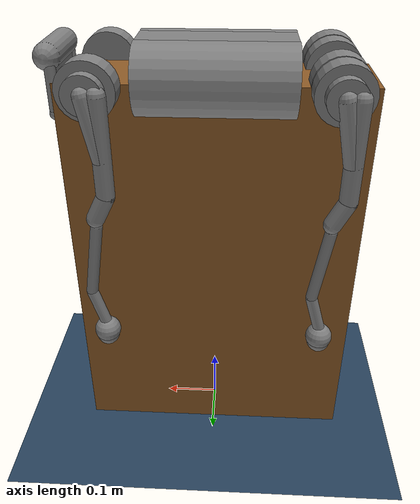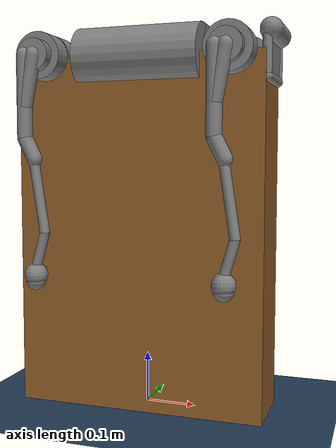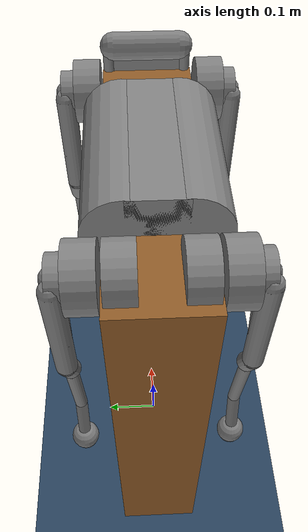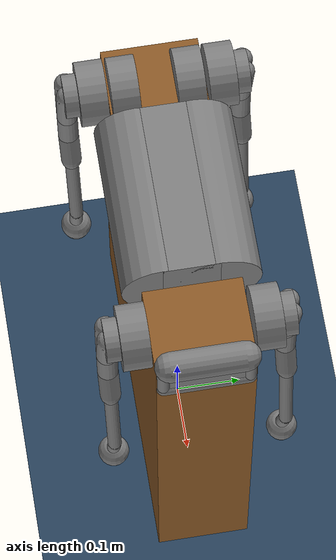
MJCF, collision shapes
<mujoco model="go1_block_scene">
  <include file="go1.xml"/>

  <statistic center="0 0 0.5" extent="1.5"/>

  <visual>
    <headlight diffuse="0.8 0.8 0.8" ambient="0.3 0.3 0.3" specular="0.1 0.1 0.1"/>
    <rgba haze="0.15 0.25 0.35 1"/>
    <global azimuth="120" elevation="-20"/>
  </visual>

  <asset>
    <texture type="skybox" builtin="gradient" rgb1="0.6 0.8 1.0" rgb2="0.2 0.4 0.6"
             width="512" height="3072"/>
    <texture type="2d" name="groundplane" builtin="checker" mark="edge"
             rgb1="0.2 0.3 0.4" rgb2="0.1 0.2 0.3" markrgb="0.8 0.8 0.8"
             width="300" height="300"/>
    <material name="groundplane" texture="groundplane" texuniform="true"
              texrepeat="5 5" reflectance="0.5"/>
    <material name="block" rgba="0.55 0.35 0.15 1"/>
  </asset>

  <worldbody>
    <light pos="0 0 2.5" dir="0 0 -1" directional="true"
           diffuse="1.0 1.0 1.0" specular="0.5 0.5 0.5"/>
    <geom name="floor" size="0 0 0.05" type="plane" material="groundplane"/>

    <geom name="block" type="box" size="0.25 0.07 0.35"
          pos="0 0 0.35" material="block" contype="1" conaffinity="1"/>
  </worldbody>

</mujoco>

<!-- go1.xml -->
<mujoco model="go1">
  <compiler angle="radian" meshdir="assets" autolimits="true"/>

  <option cone="elliptic" impratio="100"/>
  <option gravity="0 0 -9.81" iterations="50" solver="Newton" timestep="0.002"/>

  <default>
    <default class="go1">
      <geom friction="0.6" margin="0.001" condim="1"/>
      <joint axis="0 1 0" damping="2" armature="0.01" frictionloss="0.2"/>
      <motor ctrlrange="-33.5 33.5" ctrllimited="true"/>
      <default class="abduction">
        <joint axis="1 0 0" damping="1" range="-0.863 0.863"/>
        <motor ctrlrange="-33.5 33.5" ctrllimited="true"/>
      </default>
      <default class="hip">
        <joint range="-0.686 4.501"/>
        <motor ctrlrange="-33.5 33.5" ctrllimited="true"/>
      </default>
      <default class="knee">
        <joint range="-2.818 -0.888"/>
        <motor ctrlrange="-33.5 33.5" ctrllimited="true"/>
      </default>
      <default class="visual">
        <geom type="mesh" contype="0" conaffinity="0" group="2" material="dark"/>
      </default>
      <default class="collision">
        <geom group="3" type="capsule"/>
        <default class="hip_left1">
          <geom size="0.046 0.02" pos="0 0.045 0" quat="1 1 0 0" type="cylinder"/>
        </default>
        <default class="hip_left2">
          <geom size="0.031 0.02" pos="0 0.065 0" quat="1 1 0 0" type="cylinder"/>
        </default>
        <default class="hip_left3">
          <geom size="0.046 0.02" quat="1 1 0 0" type="cylinder"/>
        </default>
        <default class="hip_right1">
          <geom size="0.046 0.02" pos="0 -0.045 0" quat="1 1 0 0" type="cylinder"/>
        </default>
        <default class="hip_right2">
          <geom size="0.031 0.02" pos="0 -0.065 0" quat="1 1 0 0" type="cylinder"/>
        </default>
        <default class="hip_right3">
          <geom size="0.046 0.02" quat="1 1 0 0" type="cylinder"/>
        </default>
        <default class="thigh1">
          <geom size="0.015" fromto="-0.02 0 0 -0.02 0 -0.16"/>
        </default>
        <default class="thigh2">
          <geom size="0.015" fromto="0 0 0 -0.02 0 -0.1"/>
        </default>
        <default class="thigh3">
          <geom size="0.015" fromto="-0.02 0 -0.16 0 0 -0.2"/>
        </default>
        <default class="calf1">
          <geom size="0.01" fromto="0 0 0 0.02 0 -0.13"/>
        </default>
        <default class="calf2">
          <geom size="0.01" fromto="0.02 0 -0.13 0 0 -0.2"/>
        </default>
        <default class="foot">
          <geom type="sphere" size="0.023" pos="0 0 -0.213" priority="1"
                solimp="0.5 1 0.031" condim="6" friction=".5 0.02 0.01"/>
        </default>
      </default>
    </default>
  </default>

  <asset>
    <material name="dark" rgba="0.1 0.1 0.1 1"/>
    <mesh class="go1" file="trunk.stl"/>
    <mesh class="go1" file="hip.stl"/>
    <mesh class="go1" file="thigh_mirror.stl"/>
    <mesh class="go1" file="calf.stl"/>
    <mesh class="go1" file="thigh.stl"/>
  </asset>

  <worldbody>
    <light name="spotlight" mode="targetbodycom" target="trunk" pos="0 -1 2"/>
    <body name="trunk" pos="0 0 0.7" childclass="go1">
      <camera name="tracking" mode="trackcom" pos="0 -1 0.8" xyaxes="1 0 0 0 1 1"/>
      <site name="head" pos="0.3 0 0" rgba="1 0 0 1" size="0.02" group="5"/>
      <inertial pos="0.0223 0.002 -0.0005" quat="-0.00342088 0.705204 0.000106698 0.708996"
                mass="5.204" diaginertia="0.0716565 0.0630105 0.0168101"/>
      <freejoint/>
      <geom class="visual" mesh="trunk"/>
      <geom class="collision" size="0.125 0.04 0.057" type="box"/>
      <geom class="collision" quat="1 0 1 0" pos="0 -0.04 0" size="0.058 0.125" type="cylinder"/>
      <geom class="collision" quat="1 0 1 0" pos="0 +0.04 0" size="0.058 0.125" type="cylinder"/>
      <geom class="collision" pos="0.25 0 0" size="0.005 0.06 0.05" type="box"/>
      <geom class="collision" pos="0.25 0.06 -0.01" size="0.009 0.035"/>
      <geom class="collision" pos="0.25 -0.06 -0.01" size="0.009 0.035"/>
      <geom class="collision" pos="0.25 0 -0.05" size="0.01 0.06" quat="1 1 0 0"/>
      <geom class="collision" pos="0.255 0 0.0355" size="0.021 0.052" quat="1 1 0 0"/>
      <site name="imu" pos="0 0 0"/>

      <body name="FR_hip" pos="0.1881 -0.04675 0">
        <inertial pos="-0.0049166 0.00762615 -8.865e-05" quat="0.507341 0.514169 0.495027 0.482891"
                  mass="0.68" diaginertia="0.000734064 0.000468438 0.000398719"/>
        <joint class="abduction" name="FR_hip_joint"/>
        <geom class="visual" mesh="hip" quat="1 0 0 0"/>
        <geom class="hip_right1"/>
        <geom class="hip_right2"/>
        <body name="FR_thigh" pos="0 -0.08 0">
          <inertial pos="-0.00304722 0.019315 -0.0305004" quat="0.65243 -0.0272313 0.0775126 0.753383"
                    mass="1.009" diaginertia="0.00478717 0.00460903 0.000709268"/>
          <joint class="hip" name="FR_thigh_joint"/>
          <geom class="visual" mesh="thigh_mirror"/>
          <geom class="thigh1"/>
          <geom class="thigh2"/>
          <geom class="thigh3"/>
          <body name="FR_calf" pos="0 0 -0.213">
            <inertial pos="0.00429862 0.000976676 -0.146197" quat="0.691246 0.00357467 0.00511118 0.722592"
                      mass="0.195862" diaginertia="0.00149767 0.00148468 3.58427e-05"/>
            <joint class="knee" name="FR_calf_joint"/>
            <geom class="visual" mesh="calf"/>
            <geom class="calf1"/>
            <geom class="calf2"/>
            <geom name="FR" class="foot"/>
            <site name="FR" pos="0 0 -0.213" type="sphere" size="0.023" group="5"/>
            <site name="FR_foot_site" pos="0 0 -0.223" size="0.02"/>
          </body>
        </body>
      </body>

      <body name="FL_hip" pos="0.1881 0.04675 0">
        <inertial pos="-0.0049166 -0.00762615 -8.865e-05" quat="0.482891 0.495027 0.514169 0.507341"
                  mass="0.68" diaginertia="0.000734064 0.000468438 0.000398719"/>
        <joint class="abduction" name="FL_hip_joint"/>
        <geom class="visual" mesh="hip"/>
        <geom class="hip_left1"/>
        <geom class="hip_left2"/>
        <body name="FL_thigh" pos="0 0.08 0">
          <inertial pos="-0.00304722 -0.019315 -0.0305004" quat="0.753383 0.0775126 -0.0272313 0.65243"
                    mass="1.009" diaginertia="0.00478717 0.00460903 0.000709268"/>
          <joint class="hip" name="FL_thigh_joint"/>
          <geom class="visual" mesh="thigh"/>
          <geom class="thigh1"/>
          <geom class="thigh2"/>
          <geom class="thigh3"/>
          <body name="FL_calf" pos="0 0 -0.213">
            <inertial pos="0.00429862 0.000976676 -0.146197" quat="0.691246 0.00357467 0.00511118 0.722592"
                      mass="0.195862" diaginertia="0.00149767 0.00148468 3.58427e-05"/>
            <joint class="knee" name="FL_calf_joint"/>
            <geom class="visual" mesh="calf"/>
            <geom class="calf1"/>
            <geom class="calf2"/>
            <geom name="FL" class="foot"/>
            <site name="FL" pos="0 0 -0.213" type="sphere" size="0.023" group="5"/>
            <site name="FL_foot_site" pos="0 0 -0.223" size="0.02"/>
          </body>
        </body>
      </body>

      <body name="RR_hip" pos="-0.1881 -0.04675 0">
        <inertial pos="0.0049166 0.00762615 -8.865e-05" quat="0.495027 0.482891 0.507341 0.514169"
                  mass="0.68" diaginertia="0.000734064 0.000468438 0.000398719"/>
        <joint class="abduction" name="RR_hip_joint"/>
        <geom class="visual" quat="0 0 0 -1" mesh="hip"/>
        <geom class="hip_right1"/>
        <geom class="hip_right2"/>
        <geom class="hip_right3"/>
        <body name="RR_thigh" pos="0 -0.08 0">
          <inertial pos="-0.00304722 0.019315 -0.0305004" quat="0.65243 -0.0272313 0.0775126 0.753383"
                    mass="1.009" diaginertia="0.00478717 0.00460903 0.000709268"/>
          <joint class="hip" name="RR_thigh_joint"/>
          <geom class="visual" mesh="thigh_mirror"/>
          <geom class="thigh1"/>
          <geom class="thigh2"/>
          <geom class="thigh3"/>
          <body name="RR_calf" pos="0 0 -0.213">
            <inertial pos="0.00429862 0.000976676 -0.146197" quat="0.691246 0.00357467 0.00511118 0.722592"
                      mass="0.195862" diaginertia="0.00149767 0.00148468 3.58427e-05"/>
            <joint class="knee" name="RR_calf_joint"/>
            <geom class="visual" mesh="calf"/>
            <geom class="calf1"/>
            <geom class="calf2"/>
            <geom name="RR" class="foot"/>
            <site name="RR" pos="0 0 -0.213" type="sphere" size="0.023" group="5"/>
            <site name="RR_foot_site" pos="0 0 -0.223" size="0.02"/>
          </body>
        </body>
      </body>

      <body name="RL_hip" pos="-0.1881 0.04675 0">
        <inertial pos="0.0049166 -0.00762615 -8.865e-05" quat="0.514169 0.507341 0.482891 0.495027"
                  mass="0.68" diaginertia="0.000734064 0.000468438 0.000398719"/>
        <joint class="abduction" name="RL_hip_joint"/>
        <geom class="visual" quat="0 0 1 0" mesh="hip"/>
        <geom class="hip_left1"/>
        <geom class="hip_left2"/>
        <geom class="hip_left3"/>
        <body name="RL_thigh" pos="0 0.08 0">
          <inertial pos="-0.00304722 -0.019315 -0.0305004" quat="0.753383 0.0775126 -0.0272313 0.65243"
                    mass="1.009" diaginertia="0.00478717 0.00460903 0.000709268"/>
          <joint class="hip" name="RL_thigh_joint"/>
          <geom class="visual" mesh="thigh"/>
          <geom class="thigh1"/>
          <geom class="thigh2"/>
          <geom class="thigh3"/>
          <body name="RL_calf" pos="0 0 -0.213">
            <inertial pos="0.00429862 0.000976676 -0.146197" quat="0.691246 0.00357467 0.00511118 0.722592"
                      mass="0.195862" diaginertia="0.00149767 0.00148468 3.58427e-05"/>
            <joint class="knee" name="RL_calf_joint"/>
            <geom class="visual" mesh="calf"/>
            <geom class="calf1"/>
            <geom class="calf2"/>
            <geom name="RL" class="foot"/>
            <site name="RL" pos="0 0 -0.213" type="sphere" size="0.023" group="5"/>
            <site name="RL_foot_site" pos="0 0 -0.223" size="0.02"/>
          </body>
        </body>
      </body>

    </body>
  </worldbody>

  <actuator>
    <!-- Order matches MdlSimDriver indices 0–11                          -->
    <!-- FR: 0=hip  1=thigh  2=calf                                       -->
    <!-- FL: 3=hip  4=thigh  5=calf  (polarity -1 applied by driver)      -->
    <!-- RR: 6=hip  7=thigh  8=calf                                        -->
    <!-- RL: 9=hip 10=thigh 11=calf  (polarity -1 applied by driver)      -->
    <motor class="abduction" name="FR_hip"   joint="FR_hip_joint"/>
    <motor class="hip"       name="FR_thigh" joint="FR_thigh_joint"/>
    <motor class="knee"      name="FR_calf"  joint="FR_calf_joint"/>
    <motor class="abduction" name="FL_hip"   joint="FL_hip_joint"/>
    <motor class="hip"       name="FL_thigh" joint="FL_thigh_joint"/>
    <motor class="knee"      name="FL_calf"  joint="FL_calf_joint"/>
    <motor class="abduction" name="RR_hip"   joint="RR_hip_joint"/>
    <motor class="hip"       name="RR_thigh" joint="RR_thigh_joint"/>
    <motor class="knee"      name="RR_calf"  joint="RR_calf_joint"/>
    <motor class="abduction" name="RL_hip"   joint="RL_hip_joint"/>
    <motor class="hip"       name="RL_thigh" joint="RL_thigh_joint"/>
    <motor class="knee"      name="RL_calf"  joint="RL_calf_joint"/>
  </actuator>

  <sensor>
    <jointpos name="FR_hip_pos"   joint="FR_hip_joint"/>
    <jointpos name="FR_thigh_pos" joint="FR_thigh_joint"/>
    <jointpos name="FR_calf_pos"  joint="FR_calf_joint"/>
    <jointpos name="FL_hip_pos"   joint="FL_hip_joint"/>
    <jointpos name="FL_thigh_pos" joint="FL_thigh_joint"/>
    <jointpos name="FL_calf_pos"  joint="FL_calf_joint"/>
    <jointpos name="RR_hip_pos"   joint="RR_hip_joint"/>
    <jointpos name="RR_thigh_pos" joint="RR_thigh_joint"/>
    <jointpos name="RR_calf_pos"  joint="RR_calf_joint"/>
    <jointpos name="RL_hip_pos"   joint="RL_hip_joint"/>
    <jointpos name="RL_thigh_pos" joint="RL_thigh_joint"/>
    <jointpos name="RL_calf_pos"  joint="RL_calf_joint"/>
    <jointvel name="FR_hip_vel"   joint="FR_hip_joint"/>
    <jointvel name="FR_thigh_vel" joint="FR_thigh_joint"/>
    <jointvel name="FR_calf_vel"  joint="FR_calf_joint"/>
    <jointvel name="FL_hip_vel"   joint="FL_hip_joint"/>
    <jointvel name="FL_thigh_vel" joint="FL_thigh_joint"/>
    <jointvel name="FL_calf_vel"  joint="FL_calf_joint"/>
    <jointvel name="RR_hip_vel"   joint="RR_hip_joint"/>
    <jointvel name="RR_thigh_vel" joint="RR_thigh_joint"/>
    <jointvel name="RR_calf_vel"  joint="RR_calf_joint"/>
    <jointvel name="RL_hip_vel"   joint="RL_hip_joint"/>
    <jointvel name="RL_thigh_vel" joint="RL_thigh_joint"/>
    <jointvel name="RL_calf_vel"  joint="RL_calf_joint"/>
    <accelerometer name="Body_Acc"  site="imu"/>
    <gyro          name="Body_Gyro" site="imu"/>
    <framepos       name="Body_Pos"  objtype="site" objname="imu"/>
    <framequat      name="Body_Quat" objtype="site" objname="imu"/>
    <touch name="FR_foot_force_sensor" site="FR_foot_site"/>
    <touch name="FL_foot_force_sensor" site="FL_foot_site"/>
    <touch name="RR_foot_force_sensor" site="RR_foot_site"/>
    <touch name="RL_foot_force_sensor" site="RL_foot_site"/>
  </sensor>

</mujoco>
